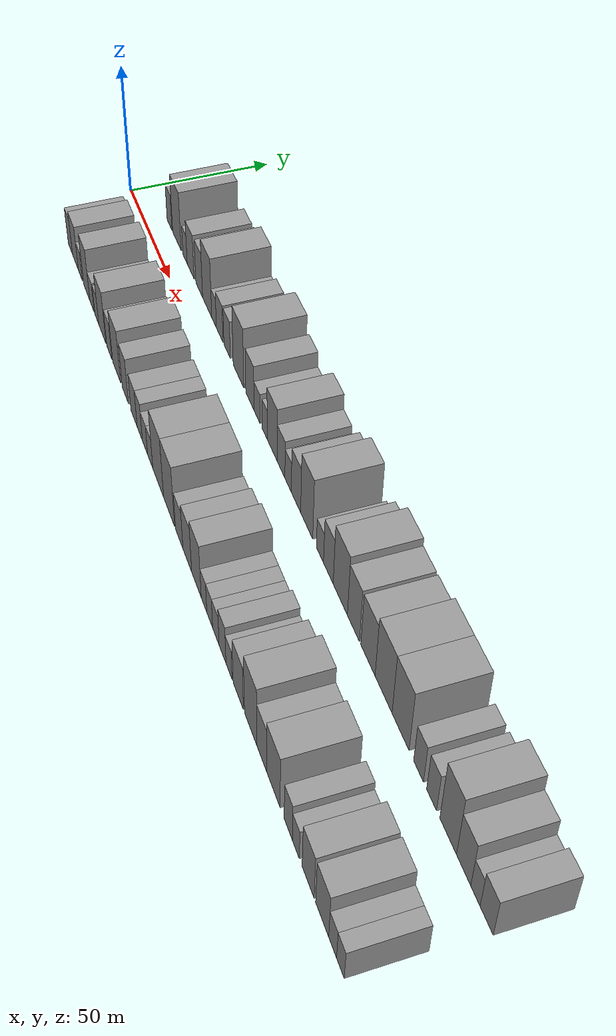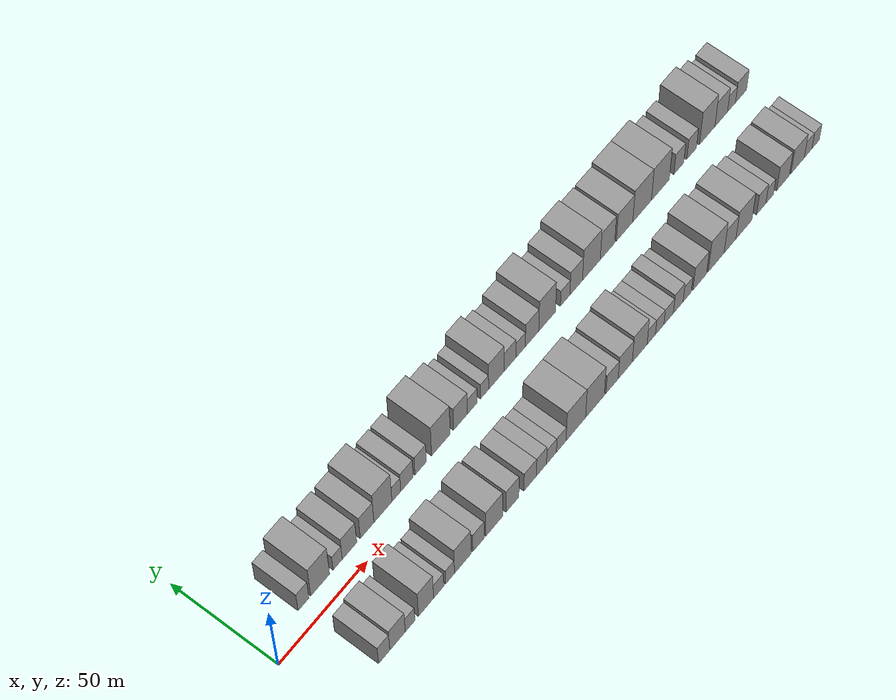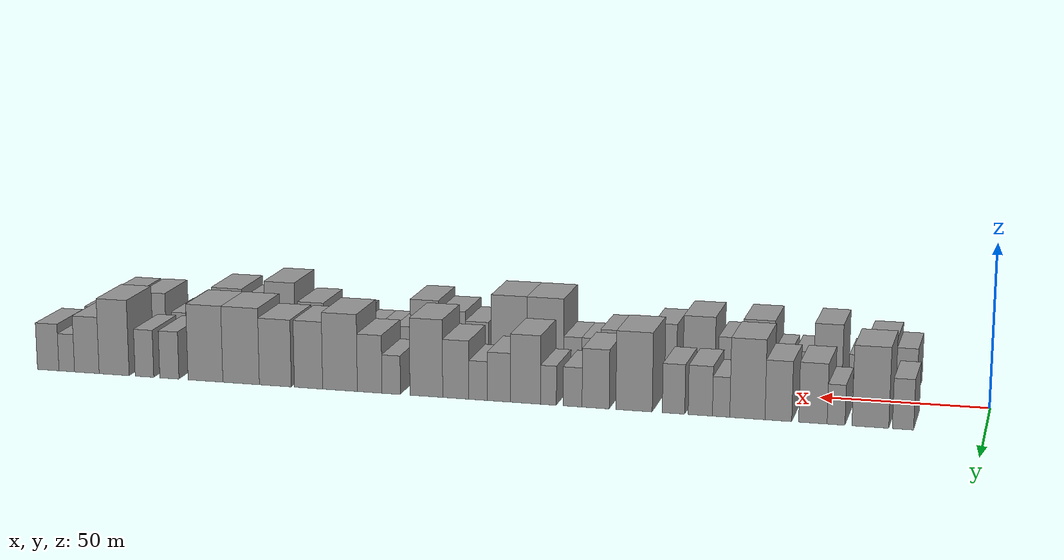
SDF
<sdf version="1.6">
 <world name="default">
  <scene>
   <sky><clouds><speed>12</speed></clouds></sky>
   <ambient>0.4 0.4 0.4 1</ambient>
   <background>0.7 0.7 0.7 1</background>
   <shadows>1</shadows>
  </scene>
  <gravity>0 0 -9.8066</gravity>
  <magnetic_field>6e-06 2.3e-05 -4.2e-05</magnetic_field>
  <physics default="0" name="default_physics" type="ode">
   <ode>
    <solver>
     <type>quick</type>
     <iters>10</iters>
     <sor>1.0</sor>
     <use_dynamic_moi_rescaling>0</use_dynamic_moi_rescaling>
    </solver>
    <constraints>
     <cfm>0</cfm>
     <erp>0.2</erp>
     <contact_max_correcting_vel>100</contact_max_correcting_vel>
     <contact_surface_layer>0.001</contact_surface_layer>
    </constraints>
   </ode>
   <max_step_size>0.004</max_step_size>
   <real_time_factor>1</real_time_factor>
   <real_time_update_rate>250</real_time_update_rate>
  </physics>
  <light name="sun" type="directional">
   <pose>0 0 10 0 0 0</pose>
   <diffuse>0.8 0.8 0.8 1</diffuse>
   <specular>0.2 0.2 0.2 1</specular>
   <attenuation>
    <range>1000</range>
    <constant>0.9</constant>
    <linear>0.01</linear>
    <quadratic>0.001</quadratic>
   </attenuation>
   <direction>-0.5 0.1 -0.9</direction>
  </light>
  <model name="building_1">
   <static>1</static>
   <pose>23.0415 17.5000 0 0.000000 0.000000 1.570796</pose>
   <link name="link">
    <pose>0 0 7.50 0 0 0</pose>
    <collision name="collision"><geometry><box><size>20.0000 6.0831 15.0000</size></box></geometry></collision>
    <visual name="visual">
     <cast_shadows>0</cast_shadows>
     <geometry><box><size>20.0000 6.0831 15.0000</size></box></geometry>
     <material>
      <script>
       <uri>model://grey_wall/materials/scripts</uri>
       <uri>model://grey_wall/materials/textures</uri>
       <name>vrc/grey_wall</name>
      </script>
     </material>
    </visual>
   </link>
  </model>
  <model name="building_2">
   <static>1</static>
   <pose>32.3609 17.5000 0 0.000000 0.000000 1.570796</pose>
   <link name="link">
    <pose>0 0 12.00 0 0 0</pose>
    <collision name="collision"><geometry><box><size>20.0000 10.5557 24.0000</size></box></geometry></collision>
    <visual name="visual">
     <cast_shadows>0</cast_shadows>
     <geometry><box><size>20.0000 10.5557 24.0000</size></box></geometry>
     <material>
      <script>
       <uri>model://grey_wall/materials/scripts</uri>
       <uri>model://grey_wall/materials/textures</uri>
       <name>vrc/grey_wall</name>
      </script>
     </material>
    </visual>
   </link>
  </model>
  <model name="building_3">
   <static>1</static>
   <pose>42.2124 17.5000 0 0.000000 0.000000 1.570796</pose>
   <link name="link">
    <pose>0 0 6.00 0 0 0</pose>
    <collision name="collision"><geometry><box><size>20.0000 5.1473 12.0000</size></box></geometry></collision>
    <visual name="visual">
     <cast_shadows>0</cast_shadows>
     <geometry><box><size>20.0000 5.1473 12.0000</size></box></geometry>
     <material>
      <script>
       <uri>model://grey_wall/materials/scripts</uri>
       <uri>model://grey_wall/materials/textures</uri>
       <name>vrc/grey_wall</name>
      </script>
     </material>
    </visual>
   </link>
  </model>
  <model name="building_4">
   <static>1</static>
   <pose>48.9135 17.5000 0 0.000000 0.000000 1.570796</pose>
   <link name="link">
    <pose>0 0 9.00 0 0 0</pose>
    <collision name="collision"><geometry><box><size>20.0000 8.2548 18.0000</size></box></geometry></collision>
    <visual name="visual">
     <cast_shadows>0</cast_shadows>
     <geometry><box><size>20.0000 8.2548 18.0000</size></box></geometry>
     <material>
      <script>
       <uri>model://grey_wall/materials/scripts</uri>
       <uri>model://grey_wall/materials/textures</uri>
       <name>vrc/grey_wall</name>
      </script>
     </material>
    </visual>
   </link>
  </model>
  <model name="building_5">
   <static>1</static>
   <pose>58.9442 17.5000 0 0.000000 0.000000 1.570796</pose>
   <link name="link">
    <pose>0 0 9.00 0 0 0</pose>
    <collision name="collision"><geometry><box><size>20.0000 7.8067 18.0000</size></box></geometry></collision>
    <visual name="visual">
     <cast_shadows>0</cast_shadows>
     <geometry><box><size>20.0000 7.8067 18.0000</size></box></geometry>
     <material>
      <script>
       <uri>model://grey_wall/materials/scripts</uri>
       <uri>model://grey_wall/materials/textures</uri>
       <name>vrc/grey_wall</name>
      </script>
     </material>
    </visual>
   </link>
  </model>
  <model name="building_6">
   <static>1</static>
   <pose>68.0096 17.5000 0 0.000000 0.000000 1.570796</pose>
   <link name="link">
    <pose>0 0 12.00 0 0 0</pose>
    <collision name="collision"><geometry><box><size>20.0000 10.3240 24.0000</size></box></geometry></collision>
    <visual name="visual">
     <cast_shadows>0</cast_shadows>
     <geometry><box><size>20.0000 10.3240 24.0000</size></box></geometry>
     <material>
      <script>
       <uri>model://grey_wall/materials/scripts</uri>
       <uri>model://grey_wall/materials/textures</uri>
       <name>vrc/grey_wall</name>
      </script>
     </material>
    </visual>
   </link>
  </model>
  <model name="building_7">
   <static>1</static>
   <pose>75.7263 17.5000 0 0.000000 0.000000 1.570796</pose>
   <link name="link">
    <pose>0 0 6.00 0 0 0</pose>
    <collision name="collision"><geometry><box><size>20.0000 5.1092 12.0000</size></box></geometry></collision>
    <visual name="visual">
     <cast_shadows>0</cast_shadows>
     <geometry><box><size>20.0000 5.1092 12.0000</size></box></geometry>
     <material>
      <script>
       <uri>model://grey_wall/materials/scripts</uri>
       <uri>model://grey_wall/materials/textures</uri>
       <name>vrc/grey_wall</name>
      </script>
     </material>
    </visual>
   </link>
  </model>
  <model name="building_8">
   <static>1</static>
   <pose>81.8742 17.5000 0 0.000000 0.000000 1.570796</pose>
   <link name="link">
    <pose>0 0 7.50 0 0 0</pose>
    <collision name="collision"><geometry><box><size>20.0000 7.1867 15.0000</size></box></geometry></collision>
    <visual name="visual">
     <cast_shadows>0</cast_shadows>
     <geometry><box><size>20.0000 7.1867 15.0000</size></box></geometry>
     <material>
      <script>
       <uri>model://grey_wall/materials/scripts</uri>
       <uri>model://grey_wall/materials/textures</uri>
       <name>vrc/grey_wall</name>
      </script>
     </material>
    </visual>
   </link>
  </model>
  <model name="building_9">
   <static>1</static>
   <pose>89.8205 17.5000 0 0.000000 0.000000 1.570796</pose>
   <link name="link">
    <pose>0 0 7.50 0 0 0</pose>
    <collision name="collision"><geometry><box><size>20.0000 6.7057 15.0000</size></box></geometry></collision>
    <visual name="visual">
     <cast_shadows>0</cast_shadows>
     <geometry><box><size>20.0000 6.7057 15.0000</size></box></geometry>
     <material>
      <script>
       <uri>model://grey_wall/materials/scripts</uri>
       <uri>model://grey_wall/materials/textures</uri>
       <name>vrc/grey_wall</name>
      </script>
     </material>
    </visual>
   </link>
  </model>
  <model name="building_10">
   <static>1</static>
   <pose>101.6345 17.5000 0 0.000000 0.000000 1.570796</pose>
   <link name="link">
    <pose>0 0 12.00 0 0 0</pose>
    <collision name="collision"><geometry><box><size>20.0000 10.9224 24.0000</size></box></geometry></collision>
    <visual name="visual">
     <cast_shadows>0</cast_shadows>
     <geometry><box><size>20.0000 10.9224 24.0000</size></box></geometry>
     <material>
      <script>
       <uri>model://grey_wall/materials/scripts</uri>
       <uri>model://grey_wall/materials/textures</uri>
       <name>vrc/grey_wall</name>
      </script>
     </material>
    </visual>
   </link>
  </model>
  <model name="building_11">
   <static>1</static>
   <pose>113.2011 17.5000 0 0.000000 0.000000 1.570796</pose>
   <link name="link">
    <pose>0 0 9.00 0 0 0</pose>
    <collision name="collision"><geometry><box><size>20.0000 8.2107 18.0000</size></box></geometry></collision>
    <visual name="visual">
     <cast_shadows>0</cast_shadows>
     <geometry><box><size>20.0000 8.2107 18.0000</size></box></geometry>
     <material>
      <script>
       <uri>model://grey_wall/materials/scripts</uri>
       <uri>model://grey_wall/materials/textures</uri>
       <name>vrc/grey_wall</name>
      </script>
     </material>
    </visual>
   </link>
  </model>
  <model name="building_12">
   <static>1</static>
   <pose>120.2065 17.5000 0 0.000000 0.000000 1.570796</pose>
   <link name="link">
    <pose>0 0 6.00 0 0 0</pose>
    <collision name="collision"><geometry><box><size>20.0000 5.8002 12.0000</size></box></geometry></collision>
    <visual name="visual">
     <cast_shadows>0</cast_shadows>
     <geometry><box><size>20.0000 5.8002 12.0000</size></box></geometry>
     <material>
      <script>
       <uri>model://grey_wall/materials/scripts</uri>
       <uri>model://grey_wall/materials/textures</uri>
       <name>vrc/grey_wall</name>
      </script>
     </material>
    </visual>
   </link>
  </model>
  <model name="building_13">
   <static>1</static>
   <pose>127.5092 17.5000 0 0.000000 0.000000 1.570796</pose>
   <link name="link">
    <pose>0 0 6.00 0 0 0</pose>
    <collision name="collision"><geometry><box><size>20.0000 4.8052 12.0000</size></box></geometry></collision>
    <visual name="visual">
     <cast_shadows>0</cast_shadows>
     <geometry><box><size>20.0000 4.8052 12.0000</size></box></geometry>
     <material>
      <script>
       <uri>model://grey_wall/materials/scripts</uri>
       <uri>model://grey_wall/materials/textures</uri>
       <name>vrc/grey_wall</name>
      </script>
     </material>
    </visual>
   </link>
  </model>
  <model name="building_14">
   <static>1</static>
   <pose>134.5642 17.5000 0 0.000000 0.000000 1.570796</pose>
   <link name="link">
    <pose>0 0 10.50 0 0 0</pose>
    <collision name="collision"><geometry><box><size>20.0000 9.3049 21.0000</size></box></geometry></collision>
    <visual name="visual">
     <cast_shadows>0</cast_shadows>
     <geometry><box><size>20.0000 9.3049 21.0000</size></box></geometry>
     <material>
      <script>
       <uri>model://grey_wall/materials/scripts</uri>
       <uri>model://grey_wall/materials/textures</uri>
       <name>vrc/grey_wall</name>
      </script>
     </material>
    </visual>
   </link>
  </model>
  <model name="building_15">
   <static>1</static>
   <pose>142.7464 17.5000 0 0.000000 0.000000 1.570796</pose>
   <link name="link">
    <pose>0 0 7.50 0 0 0</pose>
    <collision name="collision"><geometry><box><size>20.0000 7.0595 15.0000</size></box></geometry></collision>
    <visual name="visual">
     <cast_shadows>0</cast_shadows>
     <geometry><box><size>20.0000 7.0595 15.0000</size></box></geometry>
     <material>
      <script>
       <uri>model://grey_wall/materials/scripts</uri>
       <uri>model://grey_wall/materials/textures</uri>
       <name>vrc/grey_wall</name>
      </script>
     </material>
    </visual>
   </link>
  </model>
  <model name="building_16">
   <static>1</static>
   <pose>149.1308 17.5000 0 0.000000 0.000000 1.570796</pose>
   <link name="link">
    <pose>0 0 6.00 0 0 0</pose>
    <collision name="collision"><geometry><box><size>20.0000 5.7092 12.0000</size></box></geometry></collision>
    <visual name="visual">
     <cast_shadows>0</cast_shadows>
     <geometry><box><size>20.0000 5.7092 12.0000</size></box></geometry>
     <material>
      <script>
       <uri>model://grey_wall/materials/scripts</uri>
       <uri>model://grey_wall/materials/textures</uri>
       <name>vrc/grey_wall</name>
      </script>
     </material>
    </visual>
   </link>
  </model>
  <model name="building_17">
   <static>1</static>
   <pose>156.0610 17.5000 0 0.000000 0.000000 1.570796</pose>
   <link name="link">
    <pose>0 0 9.00 0 0 0</pose>
    <collision name="collision"><geometry><box><size>20.0000 8.1512 18.0000</size></box></geometry></collision>
    <visual name="visual">
     <cast_shadows>0</cast_shadows>
     <geometry><box><size>20.0000 8.1512 18.0000</size></box></geometry>
     <material>
      <script>
       <uri>model://grey_wall/materials/scripts</uri>
       <uri>model://grey_wall/materials/textures</uri>
       <name>vrc/grey_wall</name>
      </script>
     </material>
    </visual>
   </link>
  </model>
  <model name="building_18">
   <static>1</static>
   <pose>165.2565 17.5000 0 0.000000 0.000000 1.570796</pose>
   <link name="link">
    <pose>0 0 12.00 0 0 0</pose>
    <collision name="collision"><geometry><box><size>20.0000 10.2397 24.0000</size></box></geometry></collision>
    <visual name="visual">
     <cast_shadows>0</cast_shadows>
     <geometry><box><size>20.0000 10.2397 24.0000</size></box></geometry>
     <material>
      <script>
       <uri>model://grey_wall/materials/scripts</uri>
       <uri>model://grey_wall/materials/textures</uri>
       <name>vrc/grey_wall</name>
      </script>
     </material>
    </visual>
   </link>
  </model>
  <model name="building_19">
   <static>1</static>
   <pose>176.2796 17.5000 0 0.000000 0.000000 1.570796</pose>
   <link name="link">
    <pose>0 0 6.00 0 0 0</pose>
    <collision name="collision"><geometry><box><size>20.0000 5.8066 12.0000</size></box></geometry></collision>
    <visual name="visual">
     <cast_shadows>0</cast_shadows>
     <geometry><box><size>20.0000 5.8066 12.0000</size></box></geometry>
     <material>
      <script>
       <uri>model://grey_wall/materials/scripts</uri>
       <uri>model://grey_wall/materials/textures</uri>
       <name>vrc/grey_wall</name>
      </script>
     </material>
    </visual>
   </link>
  </model>
  <model name="building_20">
   <static>1</static>
   <pose>183.0763 17.5000 0 0.000000 0.000000 1.570796</pose>
   <link name="link">
    <pose>0 0 9.00 0 0 0</pose>
    <collision name="collision"><geometry><box><size>20.0000 7.7868 18.0000</size></box></geometry></collision>
    <visual name="visual">
     <cast_shadows>0</cast_shadows>
     <geometry><box><size>20.0000 7.7868 18.0000</size></box></geometry>
     <material>
      <script>
       <uri>model://grey_wall/materials/scripts</uri>
       <uri>model://grey_wall/materials/textures</uri>
       <name>vrc/grey_wall</name>
      </script>
     </material>
    </visual>
   </link>
  </model>
  <model name="building_21">
   <static>1</static>
   <pose>192.4936 17.5000 0 0.000000 0.000000 1.570796</pose>
   <link name="link">
    <pose>0 0 12.00 0 0 0</pose>
    <collision name="collision"><geometry><box><size>20.0000 11.0478 24.0000</size></box></geometry></collision>
    <visual name="visual">
     <cast_shadows>0</cast_shadows>
     <geometry><box><size>20.0000 11.0478 24.0000</size></box></geometry>
     <material>
      <script>
       <uri>model://grey_wall/materials/scripts</uri>
       <uri>model://grey_wall/materials/textures</uri>
       <name>vrc/grey_wall</name>
      </script>
     </material>
    </visual>
   </link>
  </model>
  <model name="building_22">
   <static>1</static>
   <pose>202.5421 17.5000 0 0.000000 0.000000 1.570796</pose>
   <link name="link">
    <pose>0 0 10.50 0 0 0</pose>
    <collision name="collision"><geometry><box><size>20.0000 9.0492 21.0000</size></box></geometry></collision>
    <visual name="visual">
     <cast_shadows>0</cast_shadows>
     <geometry><box><size>20.0000 9.0492 21.0000</size></box></geometry>
     <material>
      <script>
       <uri>model://grey_wall/materials/scripts</uri>
       <uri>model://grey_wall/materials/textures</uri>
       <name>vrc/grey_wall</name>
      </script>
     </material>
    </visual>
   </link>
  </model>
  <model name="building_23">
   <static>1</static>
   <pose>213.2186 17.5000 0 0.000000 0.000000 1.570796</pose>
   <link name="link">
    <pose>0 0 10.50 0 0 0</pose>
    <collision name="collision"><geometry><box><size>20.0000 10.3037 21.0000</size></box></geometry></collision>
    <visual name="visual">
     <cast_shadows>0</cast_shadows>
     <geometry><box><size>20.0000 10.3037 21.0000</size></box></geometry>
     <material>
      <script>
       <uri>model://grey_wall/materials/scripts</uri>
       <uri>model://grey_wall/materials/textures</uri>
       <name>vrc/grey_wall</name>
      </script>
     </material>
    </visual>
   </link>
  </model>
  <model name="building_24">
   <static>1</static>
   <pose>224.2956 17.5000 0 0.000000 0.000000 1.570796</pose>
   <link name="link">
    <pose>0 0 12.00 0 0 0</pose>
    <collision name="collision"><geometry><box><size>20.0000 11.8503 24.0000</size></box></geometry></collision>
    <visual name="visual">
     <cast_shadows>0</cast_shadows>
     <geometry><box><size>20.0000 11.8503 24.0000</size></box></geometry>
     <material>
      <script>
       <uri>model://grey_wall/materials/scripts</uri>
       <uri>model://grey_wall/materials/textures</uri>
       <name>vrc/grey_wall</name>
      </script>
     </material>
    </visual>
   </link>
  </model>
  <model name="building_25">
   <static>1</static>
   <pose>235.9127 17.5000 0 0.000000 0.000000 1.570796</pose>
   <link name="link">
    <pose>0 0 12.00 0 0 0</pose>
    <collision name="collision"><geometry><box><size>20.0000 11.3839 24.0000</size></box></geometry></collision>
    <visual name="visual">
     <cast_shadows>0</cast_shadows>
     <geometry><box><size>20.0000 11.3839 24.0000</size></box></geometry>
     <material>
      <script>
       <uri>model://grey_wall/materials/scripts</uri>
       <uri>model://grey_wall/materials/textures</uri>
       <name>vrc/grey_wall</name>
      </script>
     </material>
    </visual>
   </link>
  </model>
  <model name="building_26">
   <static>1</static>
   <pose>247.7587 17.5000 0 0.000000 0.000000 1.570796</pose>
   <link name="link">
    <pose>0 0 7.50 0 0 0</pose>
    <collision name="collision"><geometry><box><size>20.0000 6.3081 15.0000</size></box></geometry></collision>
    <visual name="visual">
     <cast_shadows>0</cast_shadows>
     <geometry><box><size>20.0000 6.3081 15.0000</size></box></geometry>
     <material>
      <script>
       <uri>model://grey_wall/materials/scripts</uri>
       <uri>model://grey_wall/materials/textures</uri>
       <name>vrc/grey_wall</name>
      </script>
     </material>
    </visual>
   </link>
  </model>
  <model name="building_27">
   <static>1</static>
   <pose>255.9973 17.5000 0 0.000000 0.000000 1.570796</pose>
   <link name="link">
    <pose>0 0 7.50 0 0 0</pose>
    <collision name="collision"><geometry><box><size>20.0000 6.1690 15.0000</size></box></geometry></collision>
    <visual name="visual">
     <cast_shadows>0</cast_shadows>
     <geometry><box><size>20.0000 6.1690 15.0000</size></box></geometry>
     <material>
      <script>
       <uri>model://grey_wall/materials/scripts</uri>
       <uri>model://grey_wall/materials/textures</uri>
       <name>vrc/grey_wall</name>
      </script>
     </material>
    </visual>
   </link>
  </model>
  <model name="building_28">
   <static>1</static>
   <pose>266.0833 17.5000 0 0.000000 0.000000 1.570796</pose>
   <link name="link">
    <pose>0 0 12.00 0 0 0</pose>
    <collision name="collision"><geometry><box><size>20.0000 10.0030 24.0000</size></box></geometry></collision>
    <visual name="visual">
     <cast_shadows>0</cast_shadows>
     <geometry><box><size>20.0000 10.0030 24.0000</size></box></geometry>
     <material>
      <script>
       <uri>model://grey_wall/materials/scripts</uri>
       <uri>model://grey_wall/materials/textures</uri>
       <name>vrc/grey_wall</name>
      </script>
     </material>
    </visual>
   </link>
  </model>
  <model name="building_29">
   <static>1</static>
   <pose>275.2106 17.5000 0 0.000000 0.000000 1.570796</pose>
   <link name="link">
    <pose>0 0 9.00 0 0 0</pose>
    <collision name="collision"><geometry><box><size>20.0000 8.2515 18.0000</size></box></geometry></collision>
    <visual name="visual">
     <cast_shadows>0</cast_shadows>
     <geometry><box><size>20.0000 8.2515 18.0000</size></box></geometry>
     <material>
      <script>
       <uri>model://grey_wall/materials/scripts</uri>
       <uri>model://grey_wall/materials/textures</uri>
       <name>vrc/grey_wall</name>
      </script>
     </material>
    </visual>
   </link>
  </model>
  <model name="building_30">
   <static>1</static>
   <pose>281.9641 17.5000 0 0.000000 0.000000 1.570796</pose>
   <link name="link">
    <pose>0 0 6.00 0 0 0</pose>
    <collision name="collision"><geometry><box><size>20.0000 5.2556 12.0000</size></box></geometry></collision>
    <visual name="visual">
     <cast_shadows>0</cast_shadows>
     <geometry><box><size>20.0000 5.2556 12.0000</size></box></geometry>
     <material>
      <script>
       <uri>model://grey_wall/materials/scripts</uri>
       <uri>model://grey_wall/materials/textures</uri>
       <name>vrc/grey_wall</name>
      </script>
     </material>
    </visual>
   </link>
  </model>
  <model name="building_31">
   <static>1</static>
   <pose>288.2241 17.5000 0 0.000000 0.000000 1.570796</pose>
   <link name="link">
    <pose>0 0 7.50 0 0 0</pose>
    <collision name="collision"><geometry><box><size>20.0000 7.2644 15.0000</size></box></geometry></collision>
    <visual name="visual">
     <cast_shadows>0</cast_shadows>
     <geometry><box><size>20.0000 7.2644 15.0000</size></box></geometry>
     <material>
      <script>
       <uri>model://grey_wall/materials/scripts</uri>
       <uri>model://grey_wall/materials/textures</uri>
       <name>vrc/grey_wall</name>
      </script>
     </material>
    </visual>
   </link>
  </model>
  <model name="building_32">
   <static>1</static>
   <pose>25.1367 -17.5000 0 0.000000 0.000000 1.570796</pose>
   <link name="link">
    <pose>0 0 7.50 0 0 0</pose>
    <collision name="collision"><geometry><box><size>20.0000 6.2735 15.0000</size></box></geometry></collision>
    <visual name="visual">
     <cast_shadows>0</cast_shadows>
     <geometry><box><size>20.0000 6.2735 15.0000</size></box></geometry>
     <material>
      <script>
       <uri>model://grey_wall/materials/scripts</uri>
       <uri>model://grey_wall/materials/textures</uri>
       <name>vrc/grey_wall</name>
      </script>
     </material>
    </visual>
   </link>
  </model>
  <model name="building_33">
   <static>1</static>
   <pose>32.6409 -17.5000 0 0.000000 0.000000 1.570796</pose>
   <link name="link">
    <pose>0 0 9.00 0 0 0</pose>
    <collision name="collision"><geometry><box><size>20.0000 8.7348 18.0000</size></box></geometry></collision>
    <visual name="visual">
     <cast_shadows>0</cast_shadows>
     <geometry><box><size>20.0000 8.7348 18.0000</size></box></geometry>
     <material>
      <script>
       <uri>model://grey_wall/materials/scripts</uri>
       <uri>model://grey_wall/materials/textures</uri>
       <name>vrc/grey_wall</name>
      </script>
     </material>
    </visual>
   </link>
  </model>
  <model name="building_34">
   <static>1</static>
   <pose>39.7493 -17.5000 0 0.000000 0.000000 1.570796</pose>
   <link name="link">
    <pose>0 0 6.00 0 0 0</pose>
    <collision name="collision"><geometry><box><size>20.0000 5.4820 12.0000</size></box></geometry></collision>
    <visual name="visual">
     <cast_shadows>0</cast_shadows>
     <geometry><box><size>20.0000 5.4820 12.0000</size></box></geometry>
     <material>
      <script>
       <uri>model://grey_wall/materials/scripts</uri>
       <uri>model://grey_wall/materials/textures</uri>
       <name>vrc/grey_wall</name>
      </script>
     </material>
    </visual>
   </link>
  </model>
  <model name="building_35">
   <static>1</static>
   <pose>48.8009 -17.5000 0 0.000000 0.000000 1.570796</pose>
   <link name="link">
    <pose>0 0 10.50 0 0 0</pose>
    <collision name="collision"><geometry><box><size>20.0000 8.6214 21.0000</size></box></geometry></collision>
    <visual name="visual">
     <cast_shadows>0</cast_shadows>
     <geometry><box><size>20.0000 8.6214 21.0000</size></box></geometry>
     <material>
      <script>
       <uri>model://grey_wall/materials/scripts</uri>
       <uri>model://grey_wall/materials/textures</uri>
       <name>vrc/grey_wall</name>
      </script>
     </material>
    </visual>
   </link>
  </model>
  <model name="building_36">
   <static>1</static>
   <pose>56.0517 -17.5000 0 0.000000 0.000000 1.570796</pose>
   <link name="link">
    <pose>0 0 6.00 0 0 0</pose>
    <collision name="collision"><geometry><box><size>20.0000 5.8803 12.0000</size></box></geometry></collision>
    <visual name="visual">
     <cast_shadows>0</cast_shadows>
     <geometry><box><size>20.0000 5.8803 12.0000</size></box></geometry>
     <material>
      <script>
       <uri>model://grey_wall/materials/scripts</uri>
       <uri>model://grey_wall/materials/textures</uri>
       <name>vrc/grey_wall</name>
      </script>
     </material>
    </visual>
   </link>
  </model>
  <model name="building_37">
   <static>1</static>
   <pose>62.5521 -17.5000 0 0.000000 0.000000 1.570796</pose>
   <link name="link">
    <pose>0 0 6.00 0 0 0</pose>
    <collision name="collision"><geometry><box><size>20.0000 5.1204 12.0000</size></box></geometry></collision>
    <visual name="visual">
     <cast_shadows>0</cast_shadows>
     <geometry><box><size>20.0000 5.1204 12.0000</size></box></geometry>
     <material>
      <script>
       <uri>model://grey_wall/materials/scripts</uri>
       <uri>model://grey_wall/materials/textures</uri>
       <name>vrc/grey_wall</name>
      </script>
     </material>
    </visual>
   </link>
  </model>
  <model name="building_38">
   <static>1</static>
   <pose>69.9210 -17.5000 0 0.000000 0.000000 1.570796</pose>
   <link name="link">
    <pose>0 0 10.50 0 0 0</pose>
    <collision name="collision"><geometry><box><size>20.0000 9.6175 21.0000</size></box></geometry></collision>
    <visual name="visual">
     <cast_shadows>0</cast_shadows>
     <geometry><box><size>20.0000 9.6175 21.0000</size></box></geometry>
     <material>
      <script>
       <uri>model://grey_wall/materials/scripts</uri>
       <uri>model://grey_wall/materials/textures</uri>
       <name>vrc/grey_wall</name>
      </script>
     </material>
    </visual>
   </link>
  </model>
  <model name="building_39">
   <static>1</static>
   <pose>79.0266 -17.5000 0 0.000000 0.000000 1.570796</pose>
   <link name="link">
    <pose>0 0 7.50 0 0 0</pose>
    <collision name="collision"><geometry><box><size>20.0000 6.5937 15.0000</size></box></geometry></collision>
    <visual name="visual">
     <cast_shadows>0</cast_shadows>
     <geometry><box><size>20.0000 6.5937 15.0000</size></box></geometry>
     <material>
      <script>
       <uri>model://grey_wall/materials/scripts</uri>
       <uri>model://grey_wall/materials/textures</uri>
       <name>vrc/grey_wall</name>
      </script>
     </material>
    </visual>
   </link>
  </model>
  <model name="building_40">
   <static>1</static>
   <pose>88.2619 -17.5000 0 0.000000 0.000000 1.570796</pose>
   <link name="link">
    <pose>0 0 10.50 0 0 0</pose>
    <collision name="collision"><geometry><box><size>20.0000 9.8768 21.0000</size></box></geometry></collision>
    <visual name="visual">
     <cast_shadows>0</cast_shadows>
     <geometry><box><size>20.0000 9.8768 21.0000</size></box></geometry>
     <material>
      <script>
       <uri>model://grey_wall/materials/scripts</uri>
       <uri>model://grey_wall/materials/textures</uri>
       <name>vrc/grey_wall</name>
      </script>
     </material>
    </visual>
   </link>
  </model>
  <model name="building_41">
   <static>1</static>
   <pose>98.9503 -17.5000 0 0.000000 0.000000 1.570796</pose>
   <link name="link">
    <pose>0 0 9.00 0 0 0</pose>
    <collision name="collision"><geometry><box><size>20.0000 7.5000 18.0000</size></box></geometry></collision>
    <visual name="visual">
     <cast_shadows>0</cast_shadows>
     <geometry><box><size>20.0000 7.5000 18.0000</size></box></geometry>
     <material>
      <script>
       <uri>model://grey_wall/materials/scripts</uri>
       <uri>model://grey_wall/materials/textures</uri>
       <name>vrc/grey_wall</name>
      </script>
     </material>
    </visual>
   </link>
  </model>
  <model name="building_42">
   <static>1</static>
   <pose>109.3816 -17.5000 0 0.000000 0.000000 1.570796</pose>
   <link name="link">
    <pose>0 0 7.50 0 0 0</pose>
    <collision name="collision"><geometry><box><size>20.0000 7.3627 15.0000</size></box></geometry></collision>
    <visual name="visual">
     <cast_shadows>0</cast_shadows>
     <geometry><box><size>20.0000 7.3627 15.0000</size></box></geometry>
     <material>
      <script>
       <uri>model://grey_wall/materials/scripts</uri>
       <uri>model://grey_wall/materials/textures</uri>
       <name>vrc/grey_wall</name>
      </script>
     </material>
    </visual>
   </link>
  </model>
  <model name="building_43">
   <static>1</static>
   <pose>116.0820 -17.5000 0 0.000000 0.000000 1.570796</pose>
   <link name="link">
    <pose>0 0 7.50 0 0 0</pose>
    <collision name="collision"><geometry><box><size>20.0000 6.0380 15.0000</size></box></geometry></collision>
    <visual name="visual">
     <cast_shadows>0</cast_shadows>
     <geometry><box><size>20.0000 6.0380 15.0000</size></box></geometry>
     <material>
      <script>
       <uri>model://grey_wall/materials/scripts</uri>
       <uri>model://grey_wall/materials/textures</uri>
       <name>vrc/grey_wall</name>
      </script>
     </material>
    </visual>
   </link>
  </model>
  <model name="building_44">
   <static>1</static>
   <pose>122.0610 -17.5000 0 0.000000 0.000000 1.570796</pose>
   <link name="link">
    <pose>0 0 6.00 0 0 0</pose>
    <collision name="collision"><geometry><box><size>20.0000 5.9201 12.0000</size></box></geometry></collision>
    <visual name="visual">
     <cast_shadows>0</cast_shadows>
     <geometry><box><size>20.0000 5.9201 12.0000</size></box></geometry>
     <material>
      <script>
       <uri>model://grey_wall/materials/scripts</uri>
       <uri>model://grey_wall/materials/textures</uri>
       <name>vrc/grey_wall</name>
      </script>
     </material>
    </visual>
   </link>
  </model>
  <model name="building_45">
   <static>1</static>
   <pose>127.9046 -17.5000 0 0.000000 0.000000 1.570796</pose>
   <link name="link">
    <pose>0 0 6.00 0 0 0</pose>
    <collision name="collision"><geometry><box><size>20.0000 5.7670 12.0000</size></box></geometry></collision>
    <visual name="visual">
     <cast_shadows>0</cast_shadows>
     <geometry><box><size>20.0000 5.7670 12.0000</size></box></geometry>
     <material>
      <script>
       <uri>model://grey_wall/materials/scripts</uri>
       <uri>model://grey_wall/materials/textures</uri>
       <name>vrc/grey_wall</name>
      </script>
     </material>
    </visual>
   </link>
  </model>
  <model name="building_46">
   <static>1</static>
   <pose>136.6797 -17.5000 0 0.000000 0.000000 1.570796</pose>
   <link name="link">
    <pose>0 0 12.00 0 0 0</pose>
    <collision name="collision"><geometry><box><size>20.0000 11.7832 24.0000</size></box></geometry></collision>
    <visual name="visual">
     <cast_shadows>0</cast_shadows>
     <geometry><box><size>20.0000 11.7832 24.0000</size></box></geometry>
     <material>
      <script>
       <uri>model://grey_wall/materials/scripts</uri>
       <uri>model://grey_wall/materials/textures</uri>
       <name>vrc/grey_wall</name>
      </script>
     </material>
    </visual>
   </link>
  </model>
  <model name="building_47">
   <static>1</static>
   <pose>148.2702 -17.5000 0 0.000000 0.000000 1.570796</pose>
   <link name="link">
    <pose>0 0 12.00 0 0 0</pose>
    <collision name="collision"><geometry><box><size>20.0000 11.3979 24.0000</size></box></geometry></collision>
    <visual name="visual">
     <cast_shadows>0</cast_shadows>
     <geometry><box><size>20.0000 11.3979 24.0000</size></box></geometry>
     <material>
      <script>
       <uri>model://grey_wall/materials/scripts</uri>
       <uri>model://grey_wall/materials/textures</uri>
       <name>vrc/grey_wall</name>
      </script>
     </material>
    </visual>
   </link>
  </model>
  <model name="building_48">
   <static>1</static>
   <pose>158.7032 -17.5000 0 0.000000 0.000000 1.570796</pose>
   <link name="link">
    <pose>0 0 7.50 0 0 0</pose>
    <collision name="collision"><geometry><box><size>20.0000 7.4682 15.0000</size></box></geometry></collision>
    <visual name="visual">
     <cast_shadows>0</cast_shadows>
     <geometry><box><size>20.0000 7.4682 15.0000</size></box></geometry>
     <material>
      <script>
       <uri>model://grey_wall/materials/scripts</uri>
       <uri>model://grey_wall/materials/textures</uri>
       <name>vrc/grey_wall</name>
      </script>
     </material>
    </visual>
   </link>
  </model>
  <model name="building_49">
   <static>1</static>
   <pose>166.7735 -17.5000 0 0.000000 0.000000 1.570796</pose>
   <link name="link">
    <pose>0 0 9.00 0 0 0</pose>
    <collision name="collision"><geometry><box><size>20.0000 8.6723 18.0000</size></box></geometry></collision>
    <visual name="visual">
     <cast_shadows>0</cast_shadows>
     <geometry><box><size>20.0000 8.6723 18.0000</size></box></geometry>
     <material>
      <script>
       <uri>model://grey_wall/materials/scripts</uri>
       <uri>model://grey_wall/materials/textures</uri>
       <name>vrc/grey_wall</name>
      </script>
     </material>
    </visual>
   </link>
  </model>
  <model name="building_50">
   <static>1</static>
   <pose>175.6825 -17.5000 0 0.000000 0.000000 1.570796</pose>
   <link name="link">
    <pose>0 0 10.50 0 0 0</pose>
    <collision name="collision"><geometry><box><size>20.0000 9.1459 21.0000</size></box></geometry></collision>
    <visual name="visual">
     <cast_shadows>0</cast_shadows>
     <geometry><box><size>20.0000 9.1459 21.0000</size></box></geometry>
     <material>
      <script>
       <uri>model://grey_wall/materials/scripts</uri>
       <uri>model://grey_wall/materials/textures</uri>
       <name>vrc/grey_wall</name>
      </script>
     </material>
    </visual>
   </link>
  </model>
  <model name="building_51">
   <static>1</static>
   <pose>182.8685 -17.5000 0 0.000000 0.000000 1.570796</pose>
   <link name="link">
    <pose>0 0 6.00 0 0 0</pose>
    <collision name="collision"><geometry><box><size>20.0000 5.2262 12.0000</size></box></geometry></collision>
    <visual name="visual">
     <cast_shadows>0</cast_shadows>
     <geometry><box><size>20.0000 5.2262 12.0000</size></box></geometry>
     <material>
      <script>
       <uri>model://grey_wall/materials/scripts</uri>
       <uri>model://grey_wall/materials/textures</uri>
       <name>vrc/grey_wall</name>
      </script>
     </material>
    </visual>
   </link>
  </model>
  <model name="building_52">
   <static>1</static>
   <pose>188.1442 -17.5000 0 0.000000 0.000000 1.570796</pose>
   <link name="link">
    <pose>0 0 6.00 0 0 0</pose>
    <collision name="collision"><geometry><box><size>20.0000 5.3251 12.0000</size></box></geometry></collision>
    <visual name="visual">
     <cast_shadows>0</cast_shadows>
     <geometry><box><size>20.0000 5.3251 12.0000</size></box></geometry>
     <material>
      <script>
       <uri>model://grey_wall/materials/scripts</uri>
       <uri>model://grey_wall/materials/textures</uri>
       <name>vrc/grey_wall</name>
      </script>
     </material>
    </visual>
   </link>
  </model>
  <model name="building_53">
   <static>1</static>
   <pose>193.7281 -17.5000 0 0.000000 0.000000 1.570796</pose>
   <link name="link">
    <pose>0 0 6.00 0 0 0</pose>
    <collision name="collision"><geometry><box><size>20.0000 5.8427 12.0000</size></box></geometry></collision>
    <visual name="visual">
     <cast_shadows>0</cast_shadows>
     <geometry><box><size>20.0000 5.8427 12.0000</size></box></geometry>
     <material>
      <script>
       <uri>model://grey_wall/materials/scripts</uri>
       <uri>model://grey_wall/materials/textures</uri>
       <name>vrc/grey_wall</name>
      </script>
     </material>
    </visual>
   </link>
  </model>
  <model name="building_54">
   <static>1</static>
   <pose>199.7080 -17.5000 0 0.000000 0.000000 1.570796</pose>
   <link name="link">
    <pose>0 0 7.50 0 0 0</pose>
    <collision name="collision"><geometry><box><size>20.0000 6.1171 15.0000</size></box></geometry></collision>
    <visual name="visual">
     <cast_shadows>0</cast_shadows>
     <geometry><box><size>20.0000 6.1171 15.0000</size></box></geometry>
     <material>
      <script>
       <uri>model://grey_wall/materials/scripts</uri>
       <uri>model://grey_wall/materials/textures</uri>
       <name>vrc/grey_wall</name>
      </script>
     </material>
    </visual>
   </link>
  </model>
  <model name="building_55">
   <static>1</static>
   <pose>205.3557 -17.5000 0 0.000000 0.000000 1.570796</pose>
   <link name="link">
    <pose>0 0 6.00 0 0 0</pose>
    <collision name="collision"><geometry><box><size>20.0000 5.1782 12.0000</size></box></geometry></collision>
    <visual name="visual">
     <cast_shadows>0</cast_shadows>
     <geometry><box><size>20.0000 5.1782 12.0000</size></box></geometry>
     <material>
      <script>
       <uri>model://grey_wall/materials/scripts</uri>
       <uri>model://grey_wall/materials/textures</uri>
       <name>vrc/grey_wall</name>
      </script>
     </material>
    </visual>
   </link>
  </model>
  <model name="building_56">
   <static>1</static>
   <pose>213.2613 -17.5000 0 0.000000 0.000000 1.570796</pose>
   <link name="link">
    <pose>0 0 9.00 0 0 0</pose>
    <collision name="collision"><geometry><box><size>20.0000 8.6330 18.0000</size></box></geometry></collision>
    <visual name="visual">
     <cast_shadows>0</cast_shadows>
     <geometry><box><size>20.0000 8.6330 18.0000</size></box></geometry>
     <material>
      <script>
       <uri>model://grey_wall/materials/scripts</uri>
       <uri>model://grey_wall/materials/textures</uri>
       <name>vrc/grey_wall</name>
      </script>
     </material>
    </visual>
   </link>
  </model>
  <model name="building_57">
   <static>1</static>
   <pose>223.6738 -17.5000 0 0.000000 0.000000 1.570796</pose>
   <link name="link">
    <pose>0 0 12.00 0 0 0</pose>
    <collision name="collision"><geometry><box><size>20.0000 10.1919 24.0000</size></box></geometry></collision>
    <visual name="visual">
     <cast_shadows>0</cast_shadows>
     <geometry><box><size>20.0000 10.1919 24.0000</size></box></geometry>
     <material>
      <script>
       <uri>model://grey_wall/materials/scripts</uri>
       <uri>model://grey_wall/materials/textures</uri>
       <name>vrc/grey_wall</name>
      </script>
     </material>
    </visual>
   </link>
  </model>
  <model name="building_58">
   <static>1</static>
   <pose>232.5517 -17.5000 0 0.000000 0.000000 1.570796</pose>
   <link name="link">
    <pose>0 0 9.00 0 0 0</pose>
    <collision name="collision"><geometry><box><size>20.0000 7.5640 18.0000</size></box></geometry></collision>
    <visual name="visual">
     <cast_shadows>0</cast_shadows>
     <geometry><box><size>20.0000 7.5640 18.0000</size></box></geometry>
     <material>
      <script>
       <uri>model://grey_wall/materials/scripts</uri>
       <uri>model://grey_wall/materials/textures</uri>
       <name>vrc/grey_wall</name>
      </script>
     </material>
    </visual>
   </link>
  </model>
  <model name="building_59">
   <static>1</static>
   <pose>241.5001 -17.5000 0 0.000000 0.000000 1.570796</pose>
   <link name="link">
    <pose>0 0 10.50 0 0 0</pose>
    <collision name="collision"><geometry><box><size>20.0000 10.3327 21.0000</size></box></geometry></collision>
    <visual name="visual">
     <cast_shadows>0</cast_shadows>
     <geometry><box><size>20.0000 10.3327 21.0000</size></box></geometry>
     <material>
      <script>
       <uri>model://grey_wall/materials/scripts</uri>
       <uri>model://grey_wall/materials/textures</uri>
       <name>vrc/grey_wall</name>
      </script>
     </material>
    </visual>
   </link>
  </model>
  <model name="building_60">
   <static>1</static>
   <pose>252.6736 -17.5000 0 0.000000 0.000000 1.570796</pose>
   <link name="link">
    <pose>0 0 7.50 0 0 0</pose>
    <collision name="collision"><geometry><box><size>20.0000 6.0143 15.0000</size></box></geometry></collision>
    <visual name="visual">
     <cast_shadows>0</cast_shadows>
     <geometry><box><size>20.0000 6.0143 15.0000</size></box></geometry>
     <material>
      <script>
       <uri>model://grey_wall/materials/scripts</uri>
       <uri>model://grey_wall/materials/textures</uri>
       <name>vrc/grey_wall</name>
      </script>
     </material>
    </visual>
   </link>
  </model>
  <model name="building_61">
   <static>1</static>
   <pose>258.1680 -17.5000 0 0.000000 0.000000 1.570796</pose>
   <link name="link">
    <pose>0 0 6.00 0 0 0</pose>
    <collision name="collision"><geometry><box><size>20.0000 4.9745 12.0000</size></box></geometry></collision>
    <visual name="visual">
     <cast_shadows>0</cast_shadows>
     <geometry><box><size>20.0000 4.9745 12.0000</size></box></geometry>
     <material>
      <script>
       <uri>model://grey_wall/materials/scripts</uri>
       <uri>model://grey_wall/materials/textures</uri>
       <name>vrc/grey_wall</name>
      </script>
     </material>
    </visual>
   </link>
  </model>
  <model name="building_62">
   <static>1</static>
   <pose>266.8279 -17.5000 0 0.000000 0.000000 1.570796</pose>
   <link name="link">
    <pose>0 0 9.00 0 0 0</pose>
    <collision name="collision"><geometry><box><size>20.0000 8.3455 18.0000</size></box></geometry></collision>
    <visual name="visual">
     <cast_shadows>0</cast_shadows>
     <geometry><box><size>20.0000 8.3455 18.0000</size></box></geometry>
     <material>
      <script>
       <uri>model://grey_wall/materials/scripts</uri>
       <uri>model://grey_wall/materials/textures</uri>
       <name>vrc/grey_wall</name>
      </script>
     </material>
    </visual>
   </link>
  </model>
  <model name="building_63">
   <static>1</static>
   <pose>276.3848 -17.5000 0 0.000000 0.000000 1.570796</pose>
   <link name="link">
    <pose>0 0 9.00 0 0 0</pose>
    <collision name="collision"><geometry><box><size>20.0000 8.7684 18.0000</size></box></geometry></collision>
    <visual name="visual">
     <cast_shadows>0</cast_shadows>
     <geometry><box><size>20.0000 8.7684 18.0000</size></box></geometry>
     <material>
      <script>
       <uri>model://grey_wall/materials/scripts</uri>
       <uri>model://grey_wall/materials/textures</uri>
       <name>vrc/grey_wall</name>
      </script>
     </material>
    </visual>
   </link>
  </model>
  <model name="building_64">
   <static>1</static>
   <pose>283.3242 -17.5000 0 0.000000 0.000000 1.570796</pose>
   <link name="link">
    <pose>0 0 6.00 0 0 0</pose>
    <collision name="collision"><geometry><box><size>20.0000 5.1104 12.0000</size></box></geometry></collision>
    <visual name="visual">
     <cast_shadows>0</cast_shadows>
     <geometry><box><size>20.0000 5.1104 12.0000</size></box></geometry>
     <material>
      <script>
       <uri>model://grey_wall/materials/scripts</uri>
       <uri>model://grey_wall/materials/textures</uri>
       <name>vrc/grey_wall</name>
      </script>
     </material>
    </visual>
   </link>
  </model>
  <model name="building_65">
   <static>1</static>
   <pose>288.3361 -17.5000 0 0.000000 0.000000 1.570796</pose>
   <link name="link">
    <pose>0 0 6.00 0 0 0</pose>
    <collision name="collision"><geometry><box><size>20.0000 4.9133 12.0000</size></box></geometry></collision>
    <visual name="visual">
     <cast_shadows>0</cast_shadows>
     <geometry><box><size>20.0000 4.9133 12.0000</size></box></geometry>
     <material>
      <script>
       <uri>model://grey_wall/materials/scripts</uri>
       <uri>model://grey_wall/materials/textures</uri>
       <name>vrc/grey_wall</name>
      </script>
     </material>
    </visual>
   </link>
  </model>
 </world>
</sdf>
